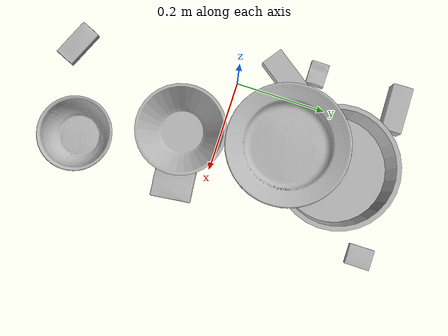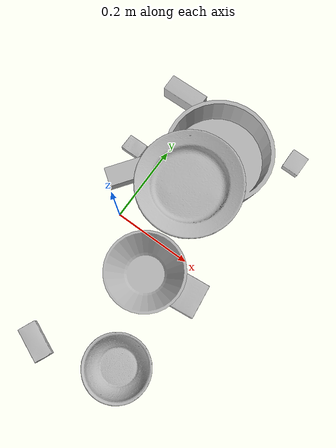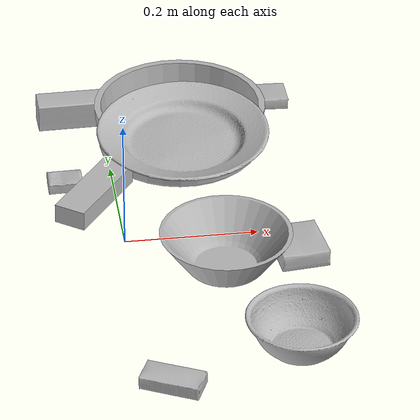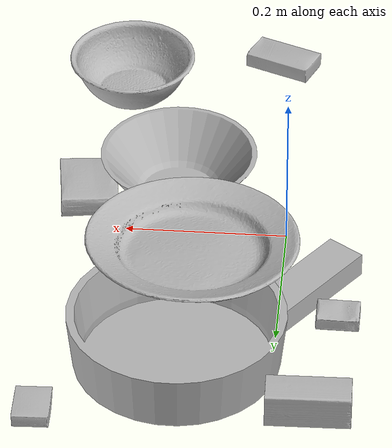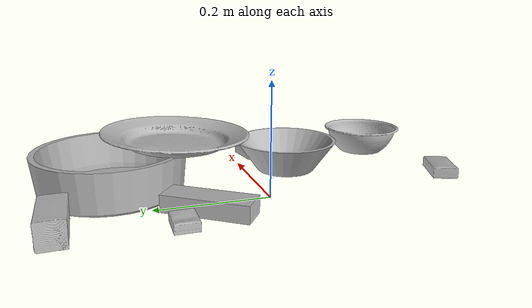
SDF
<sdf version="1.4">
  <world name="default">
    <light name="light1" type="point">
      <pose>0 0 1 0 0 0</pose>
      <diffuse>3 3 3 1</diffuse>
      <specular>3 3 3 1</specular>
    </light>
    <light name="light2" type="point">
      <pose>0 0.5 2 0 0 0</pose>
      <diffuse>1 1 1 1</diffuse>
      <specular>1 1 1 1</specular>
    </light>
    <light name="light3" type="point">
      <pose>0 0.5 2 0 0 0</pose>
      <diffuse>3 3 3 1</diffuse>
      <specular>3 3 3 1</specular>
    </light>
    <scene>
      <ambient>0.7 0.7 0.7</ambient>
    </scene>
    <model name="box1">
      <link name="link_box1">
        <collision name="default">
          <geometry>
            <mesh>
              <uri>model://jenga/collision_meshes/collision.obj</uri>
              <scale>1.0 1.0 1.0</scale>
            </mesh>
          </geometry>
          <surface>
            <friction>
              <ode>
                <mu>0.5</mu>
                <mu2>0.5</mu2>
              </ode>
            </friction>
          <contact>
        <ode>
            <max_vel>0</max_vel>
            <min_depth>0.0001</min_depth>
            <kp>1e8</kp>
        </ode>
    </contact></surface>
        </collision>
        <visual name="default">
          <geometry>
            <mesh>
              <uri>model://jenga/visual_meshes/visual.dae</uri>
              <scale>1.0 1.0 1.0</scale>
            </mesh>
          </geometry>
        </visual>
        <inertial>
          <mass>0.22956150770187378</mass>
          <pose>-2.502855807051674e-07 -0.00010250010382151231 -4.0923401684267446e-05 0.0 -7.34215461761844e-07 0.0</pose>
          <inertia>
            <ixx>6.3525236e-05</ixx>
            <iyy>0.00043044525</iyy>
            <izz>0.0004595369</izz>
            <ixy>0</ixy>
            <ixz>0</ixz>
            <iyz>0</iyz>
          </inertia>
        </inertial>
      </link>
      <pose>-0.03320682421326637 0.11393867433071136 0.015000034123659134 5.659330418889425e-06 2.3607608173405182e-06 -2.1917318724503176</pose>
    </model>
    <model name="box11">
      <link name="link_box11">
        <collision name="default">
          <geometry>
            <mesh>
              <uri>model://gelatin_box/collision_meshes/collision.obj</uri>
              <scale>1.0 1.0 1.0</scale>
            </mesh>
          </geometry>
          <surface>
            <friction>
              <ode>
                <mu>0.5</mu>
                <mu2>0.5</mu2>
              </ode>
            </friction>
          <contact>
        <ode>
            <max_vel>0</max_vel>
            <min_depth>0.0001</min_depth>
            <kp>1e8</kp>
        </ode>
    </contact></surface>
        </collision>
        <visual name="default">
          <geometry>
            <mesh>
              <uri>model://gelatin_box/visual_meshes/visual.dae</uri>
              <scale>1.0 1.0 1.0</scale>
            </mesh>
          </geometry>
        </visual>
        <inertial>
          <mass>0.23979201912879944</mass>
          <pose>0.00043196187471039593 0.00011156872642459348 -0.0003640321083366871 -0.0010503717361155602 -0.00475581776093882 0.016440559470502904</pose>
          <inertia>
            <ixx>0.00016927361</ixx>
            <iyy>0.000120911245</iyy>
            <izz>0.00025767216</izz>
            <ixy>0</ixy>
            <ixz>0</ixz>
            <iyz>0</iyz>
          </inertia>
        </inertial>
      </link>
      <pose>0.25192686915397644 -0.06340494751930237 0.015168309211730957 0.00559741236865887 -0.007304475364377411 -3.0366269674072344</pose>
    </model>
    <model name="box2">
      <link name="link_box2">
        <collision name="default">
          <geometry>
            <mesh>
              <uri>model://wood_block/collision_meshes/collision.obj</uri>
              <scale>0.5 0.5 0.5</scale>
            </mesh>
          </geometry>
          <surface>
            <friction>
              <ode>
                <mu>0.5</mu>
                <mu2>0.5</mu2>
              </ode>
            </friction>
          <contact>
        <ode>
            <max_vel>0</max_vel>
            <min_depth>0.0001</min_depth>
            <kp>1e8</kp>
        </ode>
    </contact></surface>
        </collision>
        <visual name="default">
          <geometry>
            <mesh>
              <uri>model://wood_block/visual_meshes/visual.dae</uri>
              <scale>0.5 0.5 0.5</scale>
            </mesh>
          </geometry>
        </visual>
        <inertial>
          <mass>0.1620619148015976</mass>
          <pose>-2.9066577553749084e-06 -0.000285404734313488 0.00013204291462898254 -0.05221116986778199 -0.0051926948812571205 -0.006861377876233232</pose>
          <inertia>
            <ixx>5.421584e-05</ixx>
            <iyy>0.00017126785</iyy>
            <izz>0.00017062723</izz>
            <ixy>0</ixy>
            <ixz>0</ixz>
            <iyz>0</iyz>
          </inertia>
        </inertial>
      </link>
      <pose>-0.04806811362504959 0.3439091742038727 0.02262927033007145 -0.0052086202786784 0.005718667915399643 -3.1174781961521223</pose>
    </model>
    <model name="box21">
      <link name="link_box21">
        <collision name="default">
          <geometry>
            <mesh>
              <uri>model://cracker_box/collision_meshes/collision.obj</uri>
              <scale>0.25 0.25 0.25</scale>
            </mesh>
          </geometry>
          <surface>
            <friction>
              <ode>
                <mu>0.5</mu>
                <mu2>0.5</mu2>
              </ode>
            </friction>
          <contact>
        <ode>
            <max_vel>0</max_vel>
            <min_depth>0.0001</min_depth>
            <kp>1e8</kp>
        </ode>
    </contact></surface>
        </collision>
        <visual name="default">
          <geometry>
            <mesh>
              <uri>model://cracker_box/visual_meshes/visual.dae</uri>
              <scale>0.25 0.25 0.25</scale>
            </mesh>
          </geometry>
        </visual>
        <inertial>
          <mass>0.053346797823905945</mass>
          <pose>0.0002366035187151283 6.358561950037256e-05 -0.00042573839891701937 -0.0003162075101960104 -0.011106487737771283 0.002546795233856971</pose>
          <inertia>
            <ixx>8.4806525e-06</ixx>
            <iyy>1.40032225e-05</iyy>
            <izz>1.9983887e-05</izz>
            <ixy>0</ixy>
            <ixz>0</ixz>
            <iyz>0</iyz>
          </inertia>
        </inertial>
      </link>
      <pose>-0.07322284579277039 0.16095787286758423 0.009120450355112553 -0.011788017320525496 -0.007367170334649512 5.926257877321814e-05</pose>
    </model>
    <model name="box3">
      <link name="link_box3">
        <collision name="default">
          <geometry>
            <mesh>
              <uri>model://pudding_box/collision_meshes/collision.obj</uri>
              <scale>0.5 0.5 0.5</scale>
            </mesh>
          </geometry>
          <surface>
            <friction>
              <ode>
                <mu>0.5</mu>
                <mu2>0.5</mu2>
              </ode>
            </friction>
          <contact>
        <ode>
            <max_vel>0</max_vel>
            <min_depth>0.0001</min_depth>
            <kp>1e8</kp>
        </ode>
    </contact></surface>
        </collision>
        <visual name="default">
          <geometry>
            <mesh>
              <uri>model://pudding_box/visual_meshes/visual.dae</uri>
              <scale>0.5 0.5 0.5</scale>
            </mesh>
          </geometry>
        </visual>
        <inertial>
          <mass>0.03981568291783333</mass>
          <pose>0.00024474109522998333 0.00040339428232982755 -0.00025944141088984907 0.005213101343760943 -0.0066037982384193495 0.020079821436446477</pose>
          <inertia>
            <ixx>1.1252395e-05</ixx>
            <iyy>7.5706907e-06</iyy>
            <izz>1.6617103e-05</izz>
            <ixy>0</ixy>
            <ixz>0</ixz>
            <iyz>0</iyz>
          </inertia>
        </inertial>
      </link>
      <pose>0.27766531705856323 0.36416321992874146 0.009862905368208885 0.02234949426538551 -0.011391242431249666 -3.1414269802344177</pose>
    </model>
    <model name="box31">
      <link name="link_box31">
        <collision name="default">
          <geometry>
            <mesh>
              <uri>model://sugar_box/collision_meshes/collision.obj</uri>
              <scale>0.5 0.5 0.5</scale>
            </mesh>
          </geometry>
          <surface>
            <friction>
              <ode>
                <mu>0.5</mu>
                <mu2>0.5</mu2>
              </ode>
            </friction>
          <contact>
        <ode>
            <max_vel>0</max_vel>
            <min_depth>0.0001</min_depth>
            <kp>1e8</kp>
        </ode>
    </contact></surface>
        </collision>
        <visual name="default">
          <geometry>
            <mesh>
              <uri>model://sugar_box/visual_meshes/visual.dae</uri>
              <scale>0.5 0.5 0.5</scale>
            </mesh>
          </geometry>
        </visual>
        <inertial>
          <mass>0.09878891706466675</mass>
          <pose>0.0005171863595023751 1.924554817378521e-05 -0.00018182402709499002 -0.0004046259508743568 0.001050663638168667 0.0026153790219137513</pose>
          <inertia>
            <ixx>2.0577656e-05</ixx>
            <iyy>6.651122e-05</iyy>
            <izz>7.9621874e-05</izz>
            <ixy>0</ixy>
            <ixz>0</ixz>
            <iyz>0</iyz>
          </inertia>
        </inertial>
      </link>
      <pose>0.0268198661506176 -0.3617819547653198 0.011399300768971443 0.0007758716355750984 -0.02343276519363655 2.7218768779880227</pose>
    </model>
    <model name="plate1">
      <link name="link_plate1">
        <collision name="default">
          <geometry>
            <mesh>
              <uri>model://pan_tefal/collision_meshes/collision.obj</uri>
              <scale>1.0 1.0 1.0</scale>
            </mesh>
          </geometry>
          <surface>
            <friction>
              <ode>
                <mu>0.5</mu>
                <mu2>0.5</mu2>
              </ode>
            </friction>
          <contact>
        <ode>
            <max_vel>0</max_vel>
            <min_depth>0.0001</min_depth>
            <kp>1e8</kp>
        </ode>
    </contact></surface>
        </collision>
        <visual name="default">
          <geometry>
            <mesh>
              <uri>model://pan_tefal/visual_meshes/visual.dae</uri>
              <scale>1.0 1.0 1.0</scale>
            </mesh>
          </geometry>
        </visual>
        <inertial>
          <mass>1.1273940801620483</mass>
          <pose>-0.00018001534044742584 3.279306838521734e-05 -0.00851493701338768 0.0008190361817388816 -0.00033014848142065665 -0.3318599615030245</pose>
          <inertia>
            <ixx>0.007782347</ixx>
            <iyy>0.00783252</iyy>
            <izz>0.014325799</izz>
            <ixy>0</ixy>
            <ixz>0</ixz>
            <iyz>0</iyz>
          </inertia>
        </inertial>
      </link>
      <pose>0.11522036045789719 0.25504806637763977 0.03804999589920044 -2.4396367098356195e-07 -2.897839461653161e-07 -1.6887133085193657</pose>
    </model>
    <model name="bowl1">
      <link name="link_bowl1">
        <collision name="default">
          <geometry>
            <mesh>
              <uri>model://bowl_a/collision_meshes/collision.obj</uri>
              <scale>1.0 1.0 1.0</scale>
            </mesh>
          </geometry>
          <surface>
            <friction>
              <ode>
                <mu>0.5</mu>
                <mu2>0.5</mu2>
              </ode>
            </friction>
          <contact>
        <ode>
            <max_vel>0</max_vel>
            <min_depth>0.0001</min_depth>
            <kp>1e8</kp>
        </ode>
    </contact></surface>
        </collision>
        <visual name="default">
          <geometry>
            <mesh>
              <uri>model://bowl_a/visual_meshes/visual.dae</uri>
              <scale>1.0 1.0 1.0</scale>
            </mesh>
          </geometry>
        </visual>
        <inertial>
          <mass>0.3873887062072754</mass>
          <pose>0.00027867493918165565 4.731054286821745e-05 -0.0013765293406322598 -0.0009805472575270138 -0.0010938146264646796 -0.19122952428204854</pose>
          <inertia>
            <ixx>0.0011029133</ixx>
            <iyy>0.0011096848</iyy>
            <izz>0.001961574</izz>
            <ixy>0</ixy>
            <ixz>0</ixz>
            <iyz>0</iyz>
          </inertia>
        </inertial>
      </link>
      <pose>0.14040865004062653 -0.08159156888723373 0.030383005738258362 -1.6763730365669278e-07 1.9824562512694242e-07 -0.42774327940151013</pose>
    </model>
    <model name="plate2">
      <link name="link_plate2">
        <collision name="default">
          <geometry>
            <mesh>
              <uri>model://plate/collision_meshes/collision.obj</uri>
              <scale>1.0 1.0 1.0</scale>
            </mesh>
          </geometry>
          <surface>
            <friction>
              <ode>
                <mu>0.5</mu>
                <mu2>0.5</mu2>
              </ode>
            </friction>
          <contact>
        <ode>
            <max_vel>0</max_vel>
            <min_depth>0.0001</min_depth>
            <kp>1e8</kp>
        </ode>
    </contact></surface>
        </collision>
        <visual name="default">
          <geometry>
            <mesh>
              <uri>model://plate/visual_meshes/visual.dae</uri>
              <scale>1.0 1.0 1.0</scale>
            </mesh>
          </geometry>
        </visual>
        <inertial>
          <mass>0.13866961002349854</mass>
          <pose>-0.0006044620531611145 0.0002782586379908025 -0.0010561972158029675 0.0022187857877866432 -0.0032254843385796767 0.452609315183835</pose>
          <inertia>
            <ixx>0.0006486992</ixx>
            <iyy>0.0006424946</iyy>
            <izz>0.0012687586</izz>
            <ixy>0</ixy>
            <ixz>0</ixz>
            <iyz>0</iyz>
          </inertia>
        </inertial>
      </link>
      <pose>0.10580224543809891 0.14185889065265656 0.08941585570573807 -0.014434445171680212 0.05003951272957053 -1.97258866875263</pose>
    </model>
    <model name="bowl2">
      <link name="link_bowl2">
        <collision name="default">
          <geometry>
            <mesh>
              <uri>model://bowl/collision_meshes/collision.obj</uri>
              <scale>1.0 1.0 1.0</scale>
            </mesh>
          </geometry>
          <surface>
            <friction>
              <ode>
                <mu>0.5</mu>
                <mu2>0.5</mu2>
              </ode>
            </friction>
          <contact>
        <ode>
            <max_vel>0</max_vel>
            <min_depth>0.0001</min_depth>
            <kp>1e8</kp>
        </ode>
    </contact></surface>
        </collision>
        <visual name="default">
          <geometry>
            <mesh>
              <uri>model://bowl/visual_meshes/visual.dae</uri>
              <scale>1.0 1.0 1.0</scale>
            </mesh>
          </geometry>
        </visual>
        <inertial>
          <mass>0.04854629561305046</mass>
          <pose>0.00020445325935725123 -0.0010302069131284952 -0.0008042645058594644 -0.015764106240563104 0.014546770392749554 0.7140394241749954</pose>
          <inertia>
            <ixx>0.00011151466</ixx>
            <iyy>0.00010902299</iyy>
            <izz>0.00018760598</izz>
            <ixy>0</ixy>
            <ixz>0</ixz>
            <iyz>0</iyz>
          </inertia>
        </inertial>
      </link>
      <pose>0.21831226348876953 -0.2940184772014618 0.02777981199324131 -2.2404716696174156e-05 -2.3836363771255245e-05 -1.8621305377787054</pose>
    </model>
  <physics type="ode">
      <max_contacts>50</max_contacts>
      <ode>
        <solver>
          <type>quick</type>
          <iters>75</iters>
        </solver>
        <constraints>
          <contact_max_correcting_vel>0</contact_max_correcting_vel>
          <contact_surface_layer>0</contact_surface_layer>
        </constraints>
      </ode>
    </physics></world>
</sdf>
